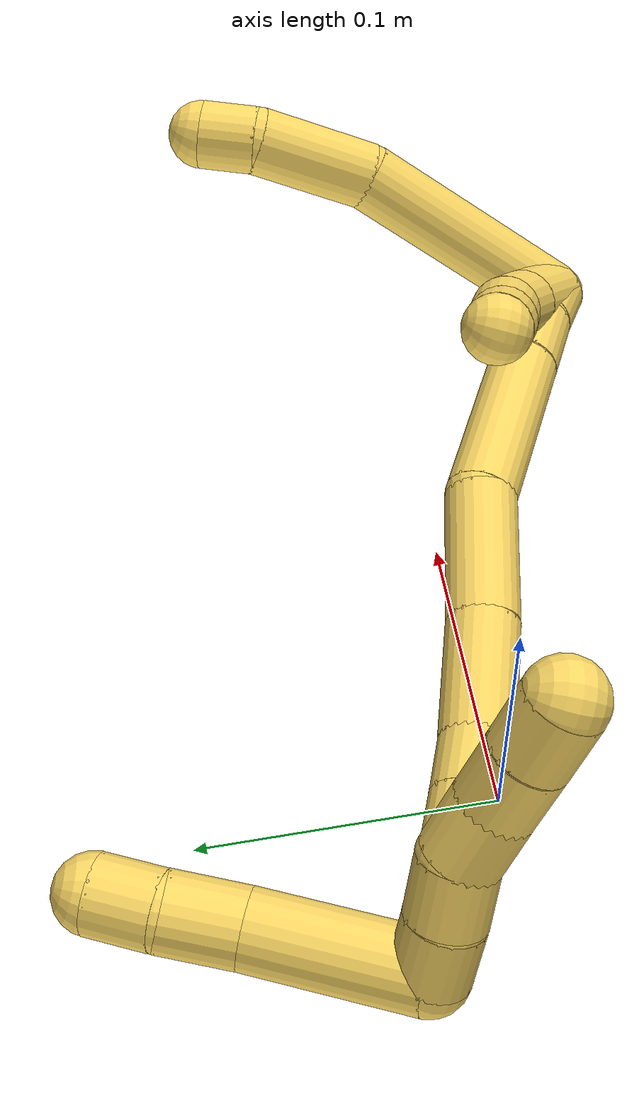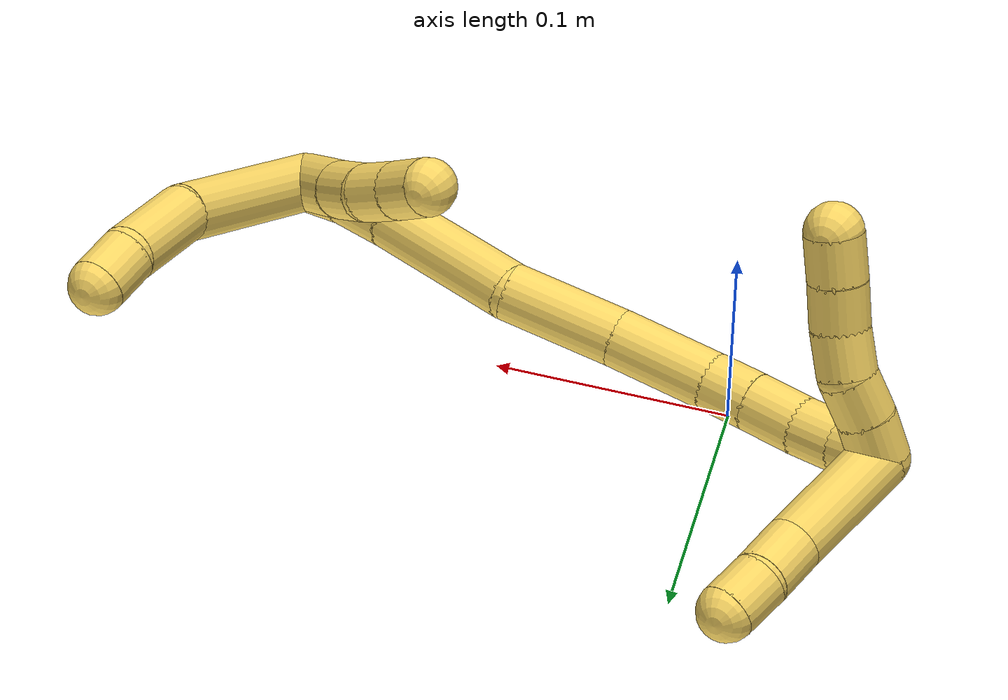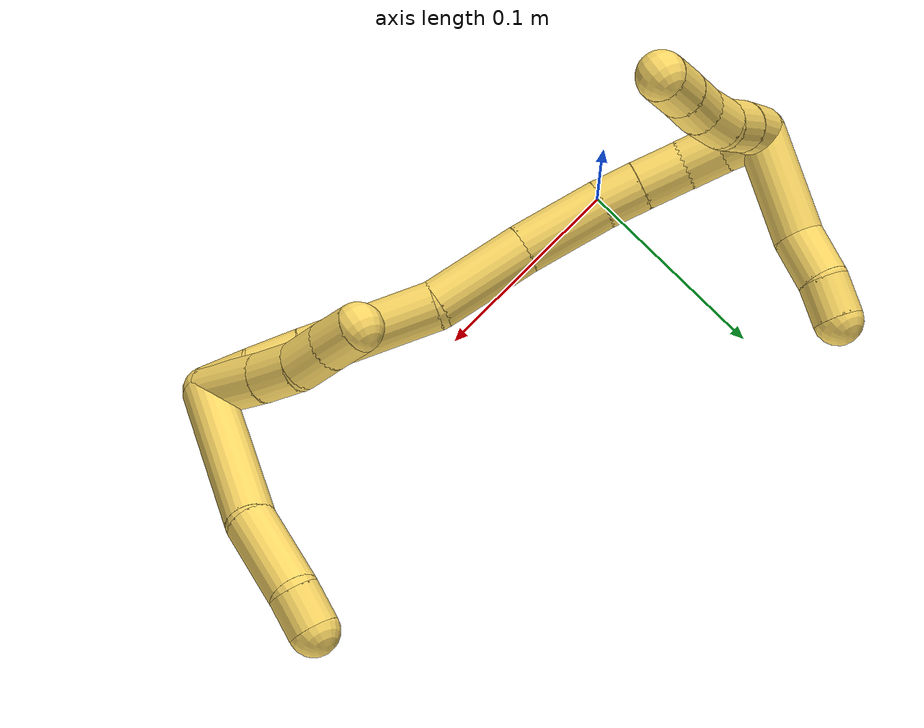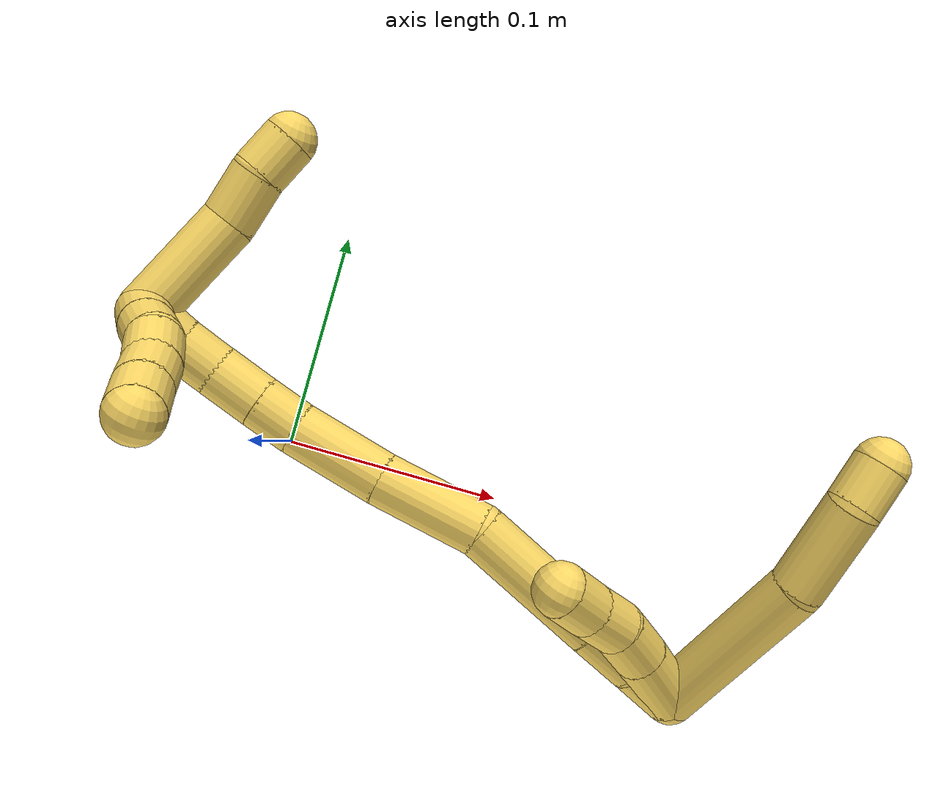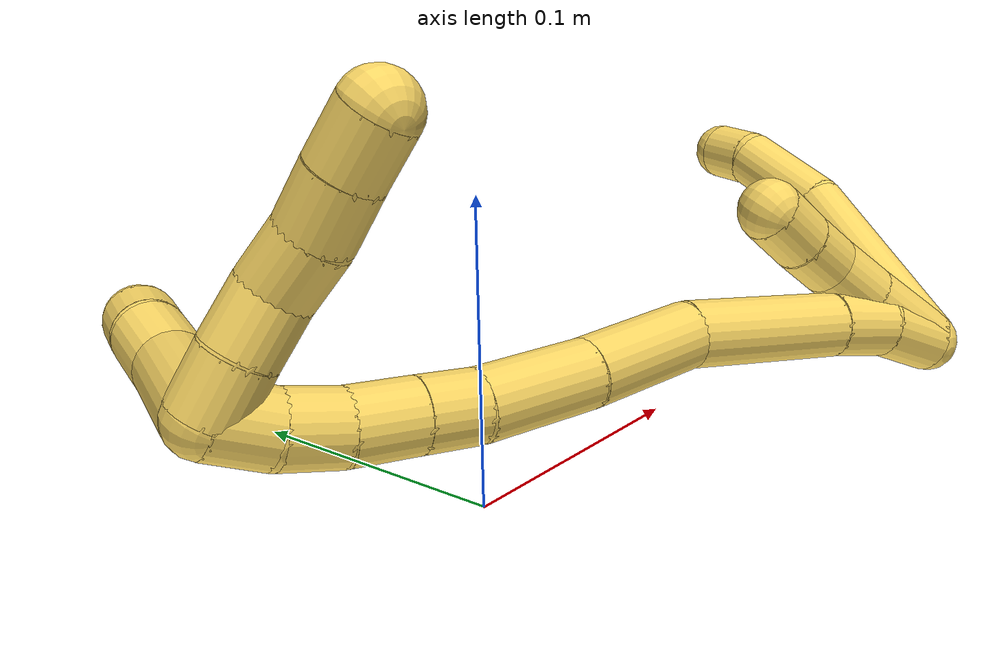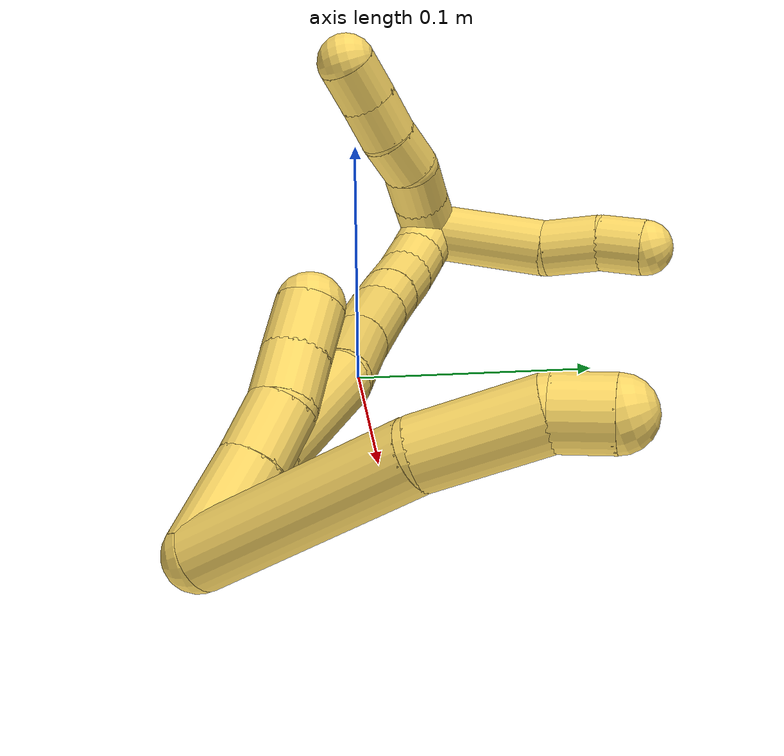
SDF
<sdf version="1.7">
 <world name="default">
  <model name="5">
   <static>0</static>
   <link name="5">
    <collision name="collision-cylinder-e_1_2_8">
     <pose>0.006463 0.010253 -0.041186 -2.8976 0.151112 -1.1063</pose>
     <geometry><cylinder><radius>0.0125</radius><length>0.085864</length></cylinder></geometry>
     <surface>
      <friction><ode><mu>1.16</mu><mu2>1.16</mu2><slip1>0</slip1><slip2>0</slip2></ode></friction>
      <contact><ode><kp>1e+06</kp><kd>1</kd><max_vel>0</max_vel><min_depth>0.001</min_depth></ode></contact>
     </surface>
    </collision>
    <visual name="visual-cylinder-e_1_2_8">
     <pose>0.006463 0.010253 -0.041186 -2.8976 0.151112 -1.1063</pose>
     <geometry><cylinder><radius>0.0125</radius><length>0.085864</length></cylinder></geometry>
     <material><ambient>1 0.858824 0.4 1</ambient></material>
    </visual>
    <collision name="collision-cylinder-e_2_8_9">
     <pose>0.013137 0.021287 -0.104209 -3.10586 0.009658 -0.527901</pose>
     <geometry><cylinder><radius>0.0125</radius><length>0.043704</length></cylinder></geometry>
     <surface>
      <friction><ode><mu>1.16</mu><mu2>1.16</mu2><slip1>0</slip1><slip2>0</slip2></ode></friction>
      <contact><ode><kp>1e+06</kp><kd>1</kd><max_vel>0</max_vel><min_depth>0.001</min_depth></ode></contact>
     </surface>
    </collision>
    <visual name="visual-cylinder-e_2_8_9">
     <pose>0.013137 0.021287 -0.104209 -3.10586 0.009658 -0.527901</pose>
     <geometry><cylinder><radius>0.0125</radius><length>0.043704</length></cylinder></geometry>
     <material><ambient>1 0.858824 0.4 1</ambient></material>
    </visual>
    <collision name="collision-cylinder-e_3_9_6">
     <pose>0.014542 0.019369 -0.135826 2.87235 0.117125 0.81705</pose>
     <geometry><cylinder><radius>0.0125</radius><length>0.020432</length></cylinder></geometry>
     <surface>
      <friction><ode><mu>1.16</mu><mu2>1.16</mu2><slip1>0</slip1><slip2>0</slip2></ode></friction>
      <contact><ode><kp>1e+06</kp><kd>1</kd><max_vel>0</max_vel><min_depth>0.001</min_depth></ode></contact>
     </surface>
    </collision>
    <visual name="visual-cylinder-e_3_9_6">
     <pose>0.014542 0.019369 -0.135826 2.87235 0.117125 0.81705</pose>
     <geometry><cylinder><radius>0.0125</radius><length>0.020432</length></cylinder></geometry>
     <material><ambient>1 0.858824 0.4 1</ambient></material>
    </visual>
    <collision name="collision-cylinder-e_1_2_10">
     <pose>-0.013872 0.005998 -0.009438 -2.57549 -0.892328 2.04893</pose>
     <geometry><cylinder><radius>0.0125</radius><length>0.035636</length></cylinder></geometry>
     <surface>
      <friction><ode><mu>1.16</mu><mu2>1.16</mu2><slip1>0</slip1><slip2>0</slip2></ode></friction>
      <contact><ode><kp>1e+06</kp><kd>1</kd><max_vel>0</max_vel><min_depth>0.001</min_depth></ode></contact>
     </surface>
    </collision>
    <visual name="visual-cylinder-e_1_2_10">
     <pose>-0.013872 0.005998 -0.009438 -2.57549 -0.892328 2.04893</pose>
     <geometry><cylinder><radius>0.0125</radius><length>0.035636</length></cylinder></geometry>
     <material><ambient>1 0.858824 0.4 1</ambient></material>
    </visual>
    <collision name="collision-cylinder-e_2_10_11">
     <pose>-0.03695 0.016198 -0.024528 -2.50218 -0.91773 1.96081</pose>
     <geometry><cylinder><radius>0.0125</radius><length>0.023182</length></cylinder></geometry>
     <surface>
      <friction><ode><mu>1.16</mu><mu2>1.16</mu2><slip1>0</slip1><slip2>0</slip2></ode></friction>
      <contact><ode><kp>1e+06</kp><kd>1</kd><max_vel>0</max_vel><min_depth>0.001</min_depth></ode></contact>
     </surface>
    </collision>
    <visual name="visual-cylinder-e_2_10_11">
     <pose>-0.03695 0.016198 -0.024528 -2.50218 -0.91773 1.96081</pose>
     <geometry><cylinder><radius>0.0125</radius><length>0.023182</length></cylinder></geometry>
     <material><ambient>1 0.858824 0.4 1</ambient></material>
    </visual>
    <collision name="collision-cylinder-e_3_11_12">
     <pose>-0.055069 0.024512 -0.033057 -2.18157 -1.05805 1.68644</pose>
     <geometry><cylinder><radius>0.0125</radius><length>0.020457</length></cylinder></geometry>
     <surface>
      <friction><ode><mu>1.16</mu><mu2>1.16</mu2><slip1>0</slip1><slip2>0</slip2></ode></friction>
      <contact><ode><kp>1e+06</kp><kd>1</kd><max_vel>0</max_vel><min_depth>0.001</min_depth></ode></contact>
     </surface>
    </collision>
    <visual name="visual-cylinder-e_3_11_12">
     <pose>-0.055069 0.024512 -0.033057 -2.18157 -1.05805 1.68644</pose>
     <geometry><cylinder><radius>0.0125</radius><length>0.020457</length></cylinder></geometry>
     <material><ambient>1 0.858824 0.4 1</ambient></material>
    </visual>
    <collision name="collision-cylinder-e_4_12_5">
     <pose>-0.072674 0.03317 -0.039273 -2.20404 -0.995104 1.6407</pose>
     <geometry><cylinder><radius>0.0125</radius><length>0.020725</length></cylinder></geometry>
     <surface>
      <friction><ode><mu>1.16</mu><mu2>1.16</mu2><slip1>0</slip1><slip2>0</slip2></ode></friction>
      <contact><ode><kp>1e+06</kp><kd>1</kd><max_vel>0</max_vel><min_depth>0.001</min_depth></ode></contact>
     </surface>
    </collision>
    <visual name="visual-cylinder-e_4_12_5">
     <pose>-0.072674 0.03317 -0.039273 -2.20404 -0.995104 1.6407</pose>
     <geometry><cylinder><radius>0.0125</radius><length>0.020725</length></cylinder></geometry>
     <material><ambient>1 0.858824 0.4 1</ambient></material>
    </visual>
    <collision name="collision-cylinder-e_1_2_13">
     <pose>-0.012473 0.001875 -0.004579 -2.75288 -1.19314 2.57735</pose>
     <geometry><cylinder><radius>0.0125</radius><length>0.026837</length></cylinder></geometry>
     <surface>
      <friction><ode><mu>1.16</mu><mu2>1.16</mu2><slip1>0</slip1><slip2>0</slip2></ode></friction>
      <contact><ode><kp>1e+06</kp><kd>1</kd><max_vel>0</max_vel><min_depth>0.001</min_depth></ode></contact>
     </surface>
    </collision>
    <visual name="visual-cylinder-e_1_2_13">
     <pose>-0.012473 0.001875 -0.004579 -2.75288 -1.19314 2.57735</pose>
     <geometry><cylinder><radius>0.0125</radius><length>0.026837</length></cylinder></geometry>
     <material><ambient>1 0.858824 0.4 1</ambient></material>
    </visual>
    <collision name="collision-cylinder-e_2_13_14">
     <pose>-0.037588 0.002683 -0.012521 2.83436 -1.29857 -2.73915</pose>
     <geometry><cylinder><radius>0.0125</radius><length>0.026251</length></cylinder></geometry>
     <surface>
      <friction><ode><mu>1.16</mu><mu2>1.16</mu2><slip1>0</slip1><slip2>0</slip2></ode></friction>
      <contact><ode><kp>1e+06</kp><kd>1</kd><max_vel>0</max_vel><min_depth>0.001</min_depth></ode></contact>
     </surface>
    </collision>
    <visual name="visual-cylinder-e_2_13_14">
     <pose>-0.037588 0.002683 -0.012521 2.83436 -1.29857 -2.73915</pose>
     <geometry><cylinder><radius>0.0125</radius><length>0.026251</length></cylinder></geometry>
     <material><ambient>1 0.858824 0.4 1</ambient></material>
    </visual>
    <collision name="collision-cylinder-e_3_14_15">
     <pose>-0.082536 -0.003152 -0.024141 2.61783 -1.28383 -2.45302</pose>
     <geometry><cylinder><radius>0.0125</radius><length>0.067365</length></cylinder></geometry>
     <surface>
      <friction><ode><mu>1.16</mu><mu2>1.16</mu2><slip1>0</slip1><slip2>0</slip2></ode></friction>
      <contact><ode><kp>1e+06</kp><kd>1</kd><max_vel>0</max_vel><min_depth>0.001</min_depth></ode></contact>
     </surface>
    </collision>
    <visual name="visual-cylinder-e_3_14_15">
     <pose>-0.082536 -0.003152 -0.024141 2.61783 -1.28383 -2.45302</pose>
     <geometry><cylinder><radius>0.0125</radius><length>0.067365</length></cylinder></geometry>
     <material><ambient>1 0.858824 0.4 1</ambient></material>
    </visual>
    <collision name="collision-cylinder-e_4_15_16">
     <pose>-0.1394 -0.012957 -0.031409 1.3771 -1.36476 -1.17881</pose>
     <geometry><cylinder><radius>0.0125</radius><length>0.05018</length></cylinder></geometry>
     <surface>
      <friction><ode><mu>1.16</mu><mu2>1.16</mu2><slip1>0</slip1><slip2>0</slip2></ode></friction>
      <contact><ode><kp>1e+06</kp><kd>1</kd><max_vel>0</max_vel><min_depth>0.001</min_depth></ode></contact>
     </surface>
    </collision>
    <visual name="visual-cylinder-e_4_15_16">
     <pose>-0.1394 -0.012957 -0.031409 1.3771 -1.36476 -1.17881</pose>
     <geometry><cylinder><radius>0.0125</radius><length>0.05018</length></cylinder></geometry>
     <material><ambient>1 0.858824 0.4 1</ambient></material>
    </visual>
    <collision name="collision-cylinder-e_5_16_17">
     <pose>-0.185727 -0.022124 -0.031128 1.74042 -1.38065 -1.54994</pose>
     <geometry><cylinder><radius>0.0125</radius><length>0.044333</length></cylinder></geometry>
     <surface>
      <friction><ode><mu>1.16</mu><mu2>1.16</mu2><slip1>0</slip1><slip2>0</slip2></ode></friction>
      <contact><ode><kp>1e+06</kp><kd>1</kd><max_vel>0</max_vel><min_depth>0.001</min_depth></ode></contact>
     </surface>
    </collision>
    <visual name="visual-cylinder-e_5_16_17">
     <pose>-0.185727 -0.022124 -0.031128 1.74042 -1.38065 -1.54994</pose>
     <geometry><cylinder><radius>0.0125</radius><length>0.044333</length></cylinder></geometry>
     <material><ambient>1 0.858824 0.4 1</ambient></material>
    </visual>
    <collision name="collision-cylinder-e_6_17_18">
     <pose>-0.21773 -0.027523 -0.033263 2.41495 -1.38626 -2.28306</pose>
     <geometry><cylinder><radius>0.0125</radius><length>0.020825</length></cylinder></geometry>
     <surface>
      <friction><ode><mu>1.16</mu><mu2>1.16</mu2><slip1>0</slip1><slip2>0</slip2></ode></friction>
      <contact><ode><kp>1e+06</kp><kd>1</kd><max_vel>0</max_vel><min_depth>0.001</min_depth></ode></contact>
     </surface>
    </collision>
    <visual name="visual-cylinder-e_6_17_18">
     <pose>-0.21773 -0.027523 -0.033263 2.41495 -1.38626 -2.28306</pose>
     <geometry><cylinder><radius>0.0125</radius><length>0.020825</length></cylinder></geometry>
     <material><ambient>1 0.858824 0.4 1</ambient></material>
    </visual>
    <collision name="collision-cylinder-e_7_18_19">
     <pose>-0.239523 -0.030462 -0.036432 2.37691 -1.36498 -2.22271</pose>
     <geometry><cylinder><radius>0.0125</radius><length>0.023614</length></cylinder></geometry>
     <surface>
      <friction><ode><mu>1.16</mu><mu2>1.16</mu2><slip1>0</slip1><slip2>0</slip2></ode></friction>
      <contact><ode><kp>1e+06</kp><kd>1</kd><max_vel>0</max_vel><min_depth>0.001</min_depth></ode></contact>
     </surface>
    </collision>
    <visual name="visual-cylinder-e_7_18_19">
     <pose>-0.239523 -0.030462 -0.036432 2.37691 -1.36498 -2.22271</pose>
     <geometry><cylinder><radius>0.0125</radius><length>0.023614</length></cylinder></geometry>
     <material><ambient>1 0.858824 0.4 1</ambient></material>
    </visual>
    <collision name="collision-cylinder-e_8_19_20">
     <pose>-0.261114 -0.032395 -0.040323 3.02026 -1.35821 -2.99137</pose>
     <geometry><cylinder><radius>0.0125</radius><length>0.020529</length></cylinder></geometry>
     <surface>
      <friction><ode><mu>1.16</mu><mu2>1.16</mu2><slip1>0</slip1><slip2>0</slip2></ode></friction>
      <contact><ode><kp>1e+06</kp><kd>1</kd><max_vel>0</max_vel><min_depth>0.001</min_depth></ode></contact>
     </surface>
    </collision>
    <visual name="visual-cylinder-e_8_19_20">
     <pose>-0.261114 -0.032395 -0.040323 3.02026 -1.35821 -2.99137</pose>
     <geometry><cylinder><radius>0.0125</radius><length>0.020529</length></cylinder></geometry>
     <material><ambient>1 0.858824 0.4 1</ambient></material>
    </visual>
    <collision name="collision-cylinder-e_9_20_1">
     <pose>-0.280547 -0.031481 -0.045779 -2.7998 -1.21351 2.6542</pose>
     <geometry><cylinder><radius>0.0125</radius><length>0.020066</length></cylinder></geometry>
     <surface>
      <friction><ode><mu>1.16</mu><mu2>1.16</mu2><slip1>0</slip1><slip2>0</slip2></ode></friction>
      <contact><ode><kp>1e+06</kp><kd>1</kd><max_vel>0</max_vel><min_depth>0.001</min_depth></ode></contact>
     </surface>
    </collision>
    <visual name="visual-cylinder-e_9_20_1">
     <pose>-0.280547 -0.031481 -0.045779 -2.7998 -1.21351 2.6542</pose>
     <geometry><cylinder><radius>0.0125</radius><length>0.020066</length></cylinder></geometry>
     <material><ambient>1 0.858824 0.4 1</ambient></material>
    </visual>
    <collision name="collision-cylinder-e_1_1_21">
     <pose>-0.282159 -0.039238 -0.073718 2.79371 0.288868 1.38286</pose>
     <geometry><cylinder><radius>0.0125</radius><length>0.054671</length></cylinder></geometry>
     <surface>
      <friction><ode><mu>1.16</mu><mu2>1.16</mu2><slip1>0</slip1><slip2>0</slip2></ode></friction>
      <contact><ode><kp>1e+06</kp><kd>1</kd><max_vel>0</max_vel><min_depth>0.001</min_depth></ode></contact>
     </surface>
    </collision>
    <visual name="visual-cylinder-e_1_1_21">
     <pose>-0.282159 -0.039238 -0.073718 2.79371 0.288868 1.38286</pose>
     <geometry><cylinder><radius>0.0125</radius><length>0.054671</length></cylinder></geometry>
     <material><ambient>1 0.858824 0.4 1</ambient></material>
    </visual>
    <collision name="collision-cylinder-e_2_21_22">
     <pose>-0.27281 -0.049972 -0.1106 2.99559 0.125454 1.41923</pose>
     <geometry><cylinder><radius>0.0125</radius><length>0.024958</length></cylinder></geometry>
     <surface>
      <friction><ode><mu>1.16</mu><mu2>1.16</mu2><slip1>0</slip1><slip2>0</slip2></ode></friction>
      <contact><ode><kp>1e+06</kp><kd>1</kd><max_vel>0</max_vel><min_depth>0.001</min_depth></ode></contact>
     </surface>
    </collision>
    <visual name="visual-cylinder-e_2_21_22">
     <pose>-0.27281 -0.049972 -0.1106 2.99559 0.125454 1.41923</pose>
     <geometry><cylinder><radius>0.0125</radius><length>0.024958</length></cylinder></geometry>
     <material><ambient>1 0.858824 0.4 1</ambient></material>
    </visual>
    <collision name="collision-cylinder-e_3_22_4">
     <pose>-0.26845 -0.054763 -0.132175 2.83126 0.278372 1.46075</pose>
     <geometry><cylinder><radius>0.0125</radius><length>0.020371</length></cylinder></geometry>
     <surface>
      <friction><ode><mu>1.16</mu><mu2>1.16</mu2><slip1>0</slip1><slip2>0</slip2></ode></friction>
      <contact><ode><kp>1e+06</kp><kd>1</kd><max_vel>0</max_vel><min_depth>0.001</min_depth></ode></contact>
     </surface>
    </collision>
    <visual name="visual-cylinder-e_3_22_4">
     <pose>-0.26845 -0.054763 -0.132175 2.83126 0.278372 1.46075</pose>
     <geometry><cylinder><radius>0.0125</radius><length>0.020371</length></cylinder></geometry>
     <material><ambient>1 0.858824 0.4 1</ambient></material>
    </visual>
    <collision name="collision-cylinder-e_1_1_23">
     <pose>-0.286759 -0.020878 -0.050075 -1.67543 0.324292 -0.359403</pose>
     <geometry><cylinder><radius>0.0125</radius><length>0.02</length></cylinder></geometry>
     <surface>
      <friction><ode><mu>1.16</mu><mu2>1.16</mu2><slip1>0</slip1><slip2>0</slip2></ode></friction>
      <contact><ode><kp>1e+06</kp><kd>1</kd><max_vel>0</max_vel><min_depth>0.001</min_depth></ode></contact>
     </surface>
    </collision>
    <visual name="visual-cylinder-e_1_1_23">
     <pose>-0.286759 -0.020878 -0.050075 -1.67543 0.324292 -0.359403</pose>
     <geometry><cylinder><radius>0.0125</radius><length>0.02</length></cylinder></geometry>
     <material><ambient>1 0.858824 0.4 1</ambient></material>
    </visual>
    <collision name="collision-cylinder-e_2_23_24">
     <pose>-0.279669 -0.002342 -0.052397 -1.71599 0.401093 -0.461937</pose>
     <geometry><cylinder><radius>0.0125</radius><length>0.02</length></cylinder></geometry>
     <surface>
      <friction><ode><mu>1.16</mu><mu2>1.16</mu2><slip1>0</slip1><slip2>0</slip2></ode></friction>
      <contact><ode><kp>1e+06</kp><kd>1</kd><max_vel>0</max_vel><min_depth>0.001</min_depth></ode></contact>
     </surface>
    </collision>
    <visual name="visual-cylinder-e_2_23_24">
     <pose>-0.279669 -0.002342 -0.052397 -1.71599 0.401093 -0.461937</pose>
     <geometry><cylinder><radius>0.0125</radius><length>0.02</length></cylinder></geometry>
     <material><ambient>1 0.858824 0.4 1</ambient></material>
    </visual>
    <collision name="collision-cylinder-e_3_24_25">
     <pose>-0.273052 0.016268 -0.052182 -1.40935 0.27474 -0.234021</pose>
     <geometry><cylinder><radius>0.0125</radius><length>0.02</length></cylinder></geometry>
     <surface>
      <friction><ode><mu>1.16</mu><mu2>1.16</mu2><slip1>0</slip1><slip2>0</slip2></ode></friction>
      <contact><ode><kp>1e+06</kp><kd>1</kd><max_vel>0</max_vel><min_depth>0.001</min_depth></ode></contact>
     </surface>
    </collision>
    <visual name="visual-cylinder-e_3_24_25">
     <pose>-0.273052 0.016268 -0.052182 -1.40935 0.27474 -0.234021</pose>
     <geometry><cylinder><radius>0.0125</radius><length>0.02</length></cylinder></geometry>
     <material><ambient>1 0.858824 0.4 1</ambient></material>
    </visual>
    <collision name="collision-cylinder-e_4_25_26">
     <pose>-0.268944 0.035624 -0.049685 -1.47477 0.139955 -0.127158</pose>
     <geometry><cylinder><radius>0.0125</radius><length>0.02</length></cylinder></geometry>
     <surface>
      <friction><ode><mu>1.16</mu><mu2>1.16</mu2><slip1>0</slip1><slip2>0</slip2></ode></friction>
      <contact><ode><kp>1e+06</kp><kd>1</kd><max_vel>0</max_vel><min_depth>0.001</min_depth></ode></contact>
     </surface>
    </collision>
    <visual name="visual-cylinder-e_4_25_26">
     <pose>-0.268944 0.035624 -0.049685 -1.47477 0.139955 -0.127158</pose>
     <geometry><cylinder><radius>0.0125</radius><length>0.02</length></cylinder></geometry>
     <material><ambient>1 0.858824 0.4 1</ambient></material>
    </visual>
    <collision name="collision-cylinder-e_5_26_3">
     <pose>-0.265777 0.055265 -0.047675 -1.46283 0.178105 -0.159925</pose>
     <geometry><cylinder><radius>0.0125</radius><length>0.02</length></cylinder></geometry>
     <surface>
      <friction><ode><mu>1.16</mu><mu2>1.16</mu2><slip1>0</slip1><slip2>0</slip2></ode></friction>
      <contact><ode><kp>1e+06</kp><kd>1</kd><max_vel>0</max_vel><min_depth>0.001</min_depth></ode></contact>
     </surface>
    </collision>
    <visual name="visual-cylinder-e_5_26_3">
     <pose>-0.265777 0.055265 -0.047675 -1.46283 0.178105 -0.159925</pose>
     <geometry><cylinder><radius>0.0125</radius><length>0.02</length></cylinder></geometry>
     <material><ambient>1 0.858824 0.4 1</ambient></material>
    </visual>
    <collision name="collision-sphere-3">
     <pose>-0.264005 0.06505 -0.046614 0 -0 0</pose>
     <geometry><sphere><radius>0.0125</radius></sphere></geometry>
     <surface>
      <friction><ode><mu>1.16</mu><mu2>1.16</mu2><slip1>0</slip1><slip2>0</slip2></ode></friction>
      <contact><ode><kp>1e+06</kp><kd>1</kd><max_vel>0</max_vel><min_depth>0.001</min_depth></ode></contact>
     </surface>
    </collision>
    <visual name="visual-sphere-3">
     <pose>-0.264005 0.06505 -0.046614 0 -0 0</pose>
     <geometry><sphere><radius>0.0125</radius></sphere></geometry>
     <material><ambient>1 0.858824 0.4 1</ambient></material>
    </visual>
    <collision name="collision-sphere-26">
     <pose>-0.267549 0.045481 -0.048736 0 -0 0</pose>
     <geometry><sphere><radius>0.0125</radius></sphere></geometry>
     <surface>
      <friction><ode><mu>1.16</mu><mu2>1.16</mu2><slip1>0</slip1><slip2>0</slip2></ode></friction>
      <contact><ode><kp>1e+06</kp><kd>1</kd><max_vel>0</max_vel><min_depth>0.001</min_depth></ode></contact>
     </surface>
    </collision>
    <visual name="visual-sphere-26">
     <pose>-0.267549 0.045481 -0.048736 0 -0 0</pose>
     <geometry><sphere><radius>0.0125</radius></sphere></geometry>
     <material><ambient>1 0.858824 0.4 1</ambient></material>
    </visual>
    <collision name="collision-sphere-25">
     <pose>-0.270339 0.025767 -0.050634 0 -0 0</pose>
     <geometry><sphere><radius>0.0125</radius></sphere></geometry>
     <surface>
      <friction><ode><mu>1.16</mu><mu2>1.16</mu2><slip1>0</slip1><slip2>0</slip2></ode></friction>
      <contact><ode><kp>1e+06</kp><kd>1</kd><max_vel>0</max_vel><min_depth>0.001</min_depth></ode></contact>
     </surface>
    </collision>
    <visual name="visual-sphere-25">
     <pose>-0.270339 0.025767 -0.050634 0 -0 0</pose>
     <geometry><sphere><radius>0.0125</radius></sphere></geometry>
     <material><ambient>1 0.858824 0.4 1</ambient></material>
    </visual>
    <collision name="collision-sphere-24">
     <pose>-0.275765 0.006768 -0.053729 0 -0 0</pose>
     <geometry><sphere><radius>0.0125</radius></sphere></geometry>
     <surface>
      <friction><ode><mu>1.16</mu><mu2>1.16</mu2><slip1>0</slip1><slip2>0</slip2></ode></friction>
      <contact><ode><kp>1e+06</kp><kd>1</kd><max_vel>0</max_vel><min_depth>0.001</min_depth></ode></contact>
     </surface>
    </collision>
    <visual name="visual-sphere-24">
     <pose>-0.275765 0.006768 -0.053729 0 -0 0</pose>
     <geometry><sphere><radius>0.0125</radius></sphere></geometry>
     <material><ambient>1 0.858824 0.4 1</ambient></material>
    </visual>
    <collision name="collision-sphere-23">
     <pose>-0.283573 -0.011451 -0.051065 0 -0 0</pose>
     <geometry><sphere><radius>0.0125</radius></sphere></geometry>
     <surface>
      <friction><ode><mu>1.16</mu><mu2>1.16</mu2><slip1>0</slip1><slip2>0</slip2></ode></friction>
      <contact><ode><kp>1e+06</kp><kd>1</kd><max_vel>0</max_vel><min_depth>0.001</min_depth></ode></contact>
     </surface>
    </collision>
    <visual name="visual-sphere-23">
     <pose>-0.283573 -0.011451 -0.051065 0 -0 0</pose>
     <geometry><sphere><radius>0.0125</radius></sphere></geometry>
     <material><ambient>1 0.858824 0.4 1</ambient></material>
    </visual>
    <collision name="collision-sphere-4">
     <pose>-0.265651 -0.057754 -0.141501 0 -0 0</pose>
     <geometry><sphere><radius>0.0125</radius></sphere></geometry>
     <surface>
      <friction><ode><mu>1.16</mu><mu2>1.16</mu2><slip1>0</slip1><slip2>0</slip2></ode></friction>
      <contact><ode><kp>1e+06</kp><kd>1</kd><max_vel>0</max_vel><min_depth>0.001</min_depth></ode></contact>
     </surface>
    </collision>
    <visual name="visual-sphere-4">
     <pose>-0.265651 -0.057754 -0.141501 0 -0 0</pose>
     <geometry><sphere><radius>0.0125</radius></sphere></geometry>
     <material><ambient>1 0.858824 0.4 1</ambient></material>
    </visual>
    <collision name="collision-sphere-22">
     <pose>-0.271249 -0.051773 -0.122849 0 -0 0</pose>
     <geometry><sphere><radius>0.0125</radius></sphere></geometry>
     <surface>
      <friction><ode><mu>1.16</mu><mu2>1.16</mu2><slip1>0</slip1><slip2>0</slip2></ode></friction>
      <contact><ode><kp>1e+06</kp><kd>1</kd><max_vel>0</max_vel><min_depth>0.001</min_depth></ode></contact>
     </surface>
    </collision>
    <visual name="visual-sphere-22">
     <pose>-0.271249 -0.051773 -0.122849 0 -0 0</pose>
     <geometry><sphere><radius>0.0125</radius></sphere></geometry>
     <material><ambient>1 0.858824 0.4 1</ambient></material>
    </visual>
    <collision name="collision-sphere-21">
     <pose>-0.274372 -0.04817 -0.098351 0 -0 0</pose>
     <geometry><sphere><radius>0.0125</radius></sphere></geometry>
     <surface>
      <friction><ode><mu>1.16</mu><mu2>1.16</mu2><slip1>0</slip1><slip2>0</slip2></ode></friction>
      <contact><ode><kp>1e+06</kp><kd>1</kd><max_vel>0</max_vel><min_depth>0.001</min_depth></ode></contact>
     </surface>
    </collision>
    <visual name="visual-sphere-21">
     <pose>-0.274372 -0.04817 -0.098351 0 -0 0</pose>
     <geometry><sphere><radius>0.0125</radius></sphere></geometry>
     <material><ambient>1 0.858824 0.4 1</ambient></material>
    </visual>
    <collision name="collision-sphere-1">
     <pose>-0.289946 -0.030305 -0.049085 0 -0 0</pose>
     <geometry><sphere><radius>0.0125</radius></sphere></geometry>
     <surface>
      <friction><ode><mu>1.16</mu><mu2>1.16</mu2><slip1>0</slip1><slip2>0</slip2></ode></friction>
      <contact><ode><kp>1e+06</kp><kd>1</kd><max_vel>0</max_vel><min_depth>0.001</min_depth></ode></contact>
     </surface>
    </collision>
    <visual name="visual-sphere-1">
     <pose>-0.289946 -0.030305 -0.049085 0 -0 0</pose>
     <geometry><sphere><radius>0.0125</radius></sphere></geometry>
     <material><ambient>1 0.858824 0.4 1</ambient></material>
    </visual>
    <collision name="collision-sphere-11">
     <pose>-0.046156 0.020401 -0.03018 0 -0 0</pose>
     <geometry><sphere><radius>0.0125</radius></sphere></geometry>
     <surface>
      <friction><ode><mu>1.16</mu><mu2>1.16</mu2><slip1>0</slip1><slip2>0</slip2></ode></friction>
      <contact><ode><kp>1e+06</kp><kd>1</kd><max_vel>0</max_vel><min_depth>0.001</min_depth></ode></contact>
     </surface>
    </collision>
    <visual name="visual-sphere-11">
     <pose>-0.046156 0.020401 -0.03018 0 -0 0</pose>
     <geometry><sphere><radius>0.0125</radius></sphere></geometry>
     <material><ambient>1 0.858824 0.4 1</ambient></material>
    </visual>
    <collision name="collision-sphere-10">
     <pose>-0.027744 0.011995 -0.018876 0 -0 0</pose>
     <geometry><sphere><radius>0.0125</radius></sphere></geometry>
     <surface>
      <friction><ode><mu>1.16</mu><mu2>1.16</mu2><slip1>0</slip1><slip2>0</slip2></ode></friction>
      <contact><ode><kp>1e+06</kp><kd>1</kd><max_vel>0</max_vel><min_depth>0.001</min_depth></ode></contact>
     </surface>
    </collision>
    <visual name="visual-sphere-10">
     <pose>-0.027744 0.011995 -0.018876 0 -0 0</pose>
     <geometry><sphere><radius>0.0125</radius></sphere></geometry>
     <material><ambient>1 0.858824 0.4 1</ambient></material>
    </visual>
    <collision name="collision-sphere-6">
     <pose>0.015736 0.01667 -0.145606 0 -0 0</pose>
     <geometry><sphere><radius>0.0125</radius></sphere></geometry>
     <surface>
      <friction><ode><mu>1.16</mu><mu2>1.16</mu2><slip1>0</slip1><slip2>0</slip2></ode></friction>
      <contact><ode><kp>1e+06</kp><kd>1</kd><max_vel>0</max_vel><min_depth>0.001</min_depth></ode></contact>
     </surface>
    </collision>
    <visual name="visual-sphere-6">
     <pose>0.015736 0.01667 -0.145606 0 -0 0</pose>
     <geometry><sphere><radius>0.0125</radius></sphere></geometry>
     <material><ambient>1 0.858824 0.4 1</ambient></material>
    </visual>
    <collision name="collision-sphere-9">
     <pose>0.013348 0.022067 -0.126046 0 -0 0</pose>
     <geometry><sphere><radius>0.0125</radius></sphere></geometry>
     <surface>
      <friction><ode><mu>1.16</mu><mu2>1.16</mu2><slip1>0</slip1><slip2>0</slip2></ode></friction>
      <contact><ode><kp>1e+06</kp><kd>1</kd><max_vel>0</max_vel><min_depth>0.001</min_depth></ode></contact>
     </surface>
    </collision>
    <visual name="visual-sphere-9">
     <pose>0.013348 0.022067 -0.126046 0 -0 0</pose>
     <geometry><sphere><radius>0.0125</radius></sphere></geometry>
     <material><ambient>1 0.858824 0.4 1</ambient></material>
    </visual>
    <collision name="collision-sphere-2">
     <geometry><sphere><radius>0.0125</radius></sphere></geometry>
     <surface>
      <friction><ode><mu>1.16</mu><mu2>1.16</mu2><slip1>0</slip1><slip2>0</slip2></ode></friction>
      <contact><ode><kp>1e+06</kp><kd>1</kd><max_vel>0</max_vel><min_depth>0.001</min_depth></ode></contact>
     </surface>
    </collision>
    <visual name="visual-sphere-2">
     <geometry><sphere><radius>0.0125</radius></sphere></geometry>
     <material><ambient>1 0.858824 0.4 1</ambient></material>
    </visual>
    <collision name="collision-sphere-19">
     <pose>-0.251081 -0.032133 -0.038173 0 -0 0</pose>
     <geometry><sphere><radius>0.0125</radius></sphere></geometry>
     <surface>
      <friction><ode><mu>1.16</mu><mu2>1.16</mu2><slip1>0</slip1><slip2>0</slip2></ode></friction>
      <contact><ode><kp>1e+06</kp><kd>1</kd><max_vel>0</max_vel><min_depth>0.001</min_depth></ode></contact>
     </surface>
    </collision>
    <visual name="visual-sphere-19">
     <pose>-0.251081 -0.032133 -0.038173 0 -0 0</pose>
     <geometry><sphere><radius>0.0125</radius></sphere></geometry>
     <material><ambient>1 0.858824 0.4 1</ambient></material>
    </visual>
    <collision name="collision-sphere-8">
     <pose>0.012926 0.020506 -0.082372 0 -0 0</pose>
     <geometry><sphere><radius>0.0125</radius></sphere></geometry>
     <surface>
      <friction><ode><mu>1.16</mu><mu2>1.16</mu2><slip1>0</slip1><slip2>0</slip2></ode></friction>
      <contact><ode><kp>1e+06</kp><kd>1</kd><max_vel>0</max_vel><min_depth>0.001</min_depth></ode></contact>
     </surface>
    </collision>
    <visual name="visual-sphere-8">
     <pose>0.012926 0.020506 -0.082372 0 -0 0</pose>
     <geometry><sphere><radius>0.0125</radius></sphere></geometry>
     <material><ambient>1 0.858824 0.4 1</ambient></material>
    </visual>
    <collision name="collision-sphere-12">
     <pose>-0.063982 0.028622 -0.035935 0 -0 0</pose>
     <geometry><sphere><radius>0.0125</radius></sphere></geometry>
     <surface>
      <friction><ode><mu>1.16</mu><mu2>1.16</mu2><slip1>0</slip1><slip2>0</slip2></ode></friction>
      <contact><ode><kp>1e+06</kp><kd>1</kd><max_vel>0</max_vel><min_depth>0.001</min_depth></ode></contact>
     </surface>
    </collision>
    <visual name="visual-sphere-12">
     <pose>-0.063982 0.028622 -0.035935 0 -0 0</pose>
     <geometry><sphere><radius>0.0125</radius></sphere></geometry>
     <material><ambient>1 0.858824 0.4 1</ambient></material>
    </visual>
    <collision name="collision-sphere-5">
     <pose>-0.081366 0.037718 -0.042612 0 -0 0</pose>
     <geometry><sphere><radius>0.0125</radius></sphere></geometry>
     <surface>
      <friction><ode><mu>1.16</mu><mu2>1.16</mu2><slip1>0</slip1><slip2>0</slip2></ode></friction>
      <contact><ode><kp>1e+06</kp><kd>1</kd><max_vel>0</max_vel><min_depth>0.001</min_depth></ode></contact>
     </surface>
    </collision>
    <visual name="visual-sphere-5">
     <pose>-0.081366 0.037718 -0.042612 0 -0 0</pose>
     <geometry><sphere><radius>0.0125</radius></sphere></geometry>
     <material><ambient>1 0.858824 0.4 1</ambient></material>
    </visual>
    <collision name="collision-sphere-13">
     <pose>-0.024946 0.003751 -0.009158 0 -0 0</pose>
     <geometry><sphere><radius>0.0125</radius></sphere></geometry>
     <surface>
      <friction><ode><mu>1.16</mu><mu2>1.16</mu2><slip1>0</slip1><slip2>0</slip2></ode></friction>
      <contact><ode><kp>1e+06</kp><kd>1</kd><max_vel>0</max_vel><min_depth>0.001</min_depth></ode></contact>
     </surface>
    </collision>
    <visual name="visual-sphere-13">
     <pose>-0.024946 0.003751 -0.009158 0 -0 0</pose>
     <geometry><sphere><radius>0.0125</radius></sphere></geometry>
     <material><ambient>1 0.858824 0.4 1</ambient></material>
    </visual>
    <collision name="collision-sphere-14">
     <pose>-0.050231 0.001616 -0.015885 0 -0 0</pose>
     <geometry><sphere><radius>0.0125</radius></sphere></geometry>
     <surface>
      <friction><ode><mu>1.16</mu><mu2>1.16</mu2><slip1>0</slip1><slip2>0</slip2></ode></friction>
      <contact><ode><kp>1e+06</kp><kd>1</kd><max_vel>0</max_vel><min_depth>0.001</min_depth></ode></contact>
     </surface>
    </collision>
    <visual name="visual-sphere-14">
     <pose>-0.050231 0.001616 -0.015885 0 -0 0</pose>
     <geometry><sphere><radius>0.0125</radius></sphere></geometry>
     <material><ambient>1 0.858824 0.4 1</ambient></material>
    </visual>
    <collision name="collision-sphere-15">
     <pose>-0.114841 -0.00792 -0.032397 0 -0 0</pose>
     <geometry><sphere><radius>0.0125</radius></sphere></geometry>
     <surface>
      <friction><ode><mu>1.16</mu><mu2>1.16</mu2><slip1>0</slip1><slip2>0</slip2></ode></friction>
      <contact><ode><kp>1e+06</kp><kd>1</kd><max_vel>0</max_vel><min_depth>0.001</min_depth></ode></contact>
     </surface>
    </collision>
    <visual name="visual-sphere-15">
     <pose>-0.114841 -0.00792 -0.032397 0 -0 0</pose>
     <geometry><sphere><radius>0.0125</radius></sphere></geometry>
     <material><ambient>1 0.858824 0.4 1</ambient></material>
    </visual>
    <collision name="collision-sphere-16">
     <pose>-0.16396 -0.017994 -0.030421 0 -0 0</pose>
     <geometry><sphere><radius>0.0125</radius></sphere></geometry>
     <surface>
      <friction><ode><mu>1.16</mu><mu2>1.16</mu2><slip1>0</slip1><slip2>0</slip2></ode></friction>
      <contact><ode><kp>1e+06</kp><kd>1</kd><max_vel>0</max_vel><min_depth>0.001</min_depth></ode></contact>
     </surface>
    </collision>
    <visual name="visual-sphere-16">
     <pose>-0.16396 -0.017994 -0.030421 0 -0 0</pose>
     <geometry><sphere><radius>0.0125</radius></sphere></geometry>
     <material><ambient>1 0.858824 0.4 1</ambient></material>
    </visual>
    <collision name="collision-sphere-17">
     <pose>-0.207494 -0.026253 -0.031835 0 -0 0</pose>
     <geometry><sphere><radius>0.0125</radius></sphere></geometry>
     <surface>
      <friction><ode><mu>1.16</mu><mu2>1.16</mu2><slip1>0</slip1><slip2>0</slip2></ode></friction>
      <contact><ode><kp>1e+06</kp><kd>1</kd><max_vel>0</max_vel><min_depth>0.001</min_depth></ode></contact>
     </surface>
    </collision>
    <visual name="visual-sphere-17">
     <pose>-0.207494 -0.026253 -0.031835 0 -0 0</pose>
     <geometry><sphere><radius>0.0125</radius></sphere></geometry>
     <material><ambient>1 0.858824 0.4 1</ambient></material>
    </visual>
    <collision name="collision-sphere-18">
     <pose>-0.227965 -0.028792 -0.034691 0 -0 0</pose>
     <geometry><sphere><radius>0.0125</radius></sphere></geometry>
     <surface>
      <friction><ode><mu>1.16</mu><mu2>1.16</mu2><slip1>0</slip1><slip2>0</slip2></ode></friction>
      <contact><ode><kp>1e+06</kp><kd>1</kd><max_vel>0</max_vel><min_depth>0.001</min_depth></ode></contact>
     </surface>
    </collision>
    <visual name="visual-sphere-18">
     <pose>-0.227965 -0.028792 -0.034691 0 -0 0</pose>
     <geometry><sphere><radius>0.0125</radius></sphere></geometry>
     <material><ambient>1 0.858824 0.4 1</ambient></material>
    </visual>
    <collision name="collision-sphere-20">
     <pose>-0.271147 -0.032657 -0.042473 0 -0 0</pose>
     <geometry><sphere><radius>0.0125</radius></sphere></geometry>
     <surface>
      <friction><ode><mu>1.16</mu><mu2>1.16</mu2><slip1>0</slip1><slip2>0</slip2></ode></friction>
      <contact><ode><kp>1e+06</kp><kd>1</kd><max_vel>0</max_vel><min_depth>0.001</min_depth></ode></contact>
     </surface>
    </collision>
    <visual name="visual-sphere-20">
     <pose>-0.271147 -0.032657 -0.042473 0 -0 0</pose>
     <geometry><sphere><radius>0.0125</radius></sphere></geometry>
     <material><ambient>1 0.858824 0.4 1</ambient></material>
    </visual>
    <inertial>
     <pose>-0.134714 -0.004209 -0.048157 0 -0 0</pose>
     <mass>0.75</mass>
     <inertia><ixx>-3e-05</ixx><ixy>0</ixy><ixz>0</ixz><iyy>3e-06</iyy><iyz>0</iyz><izz>1.6e-05</izz></inertia>
    </inertial>
   </link>
   <pose>0.203651 -0.066126 0.012401 1.90152 0.155305 -0.172878</pose>
  </model>
 </world>
</sdf>
